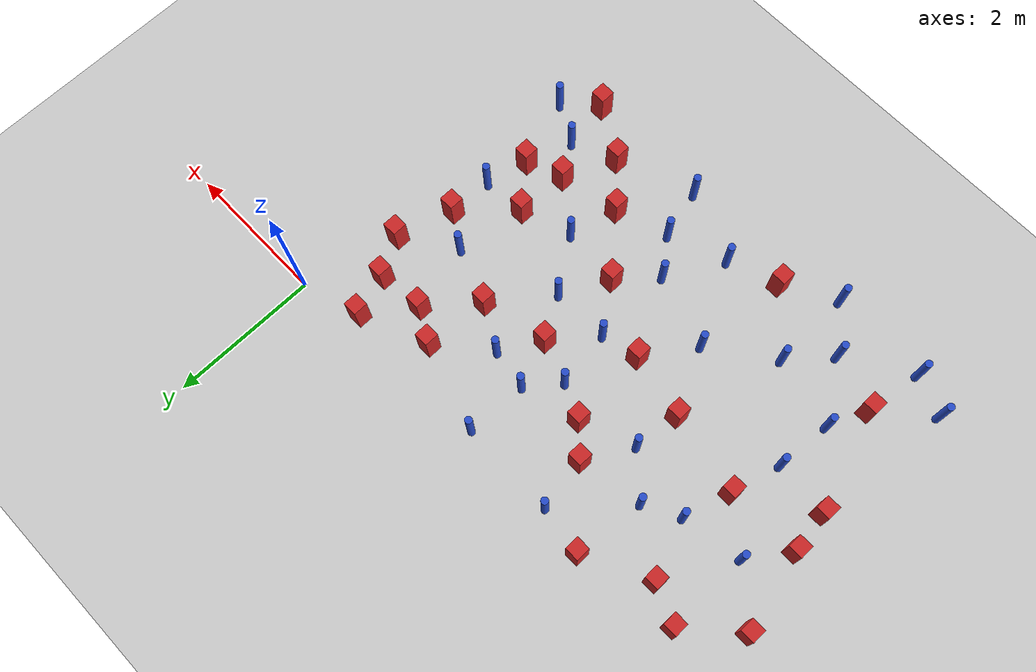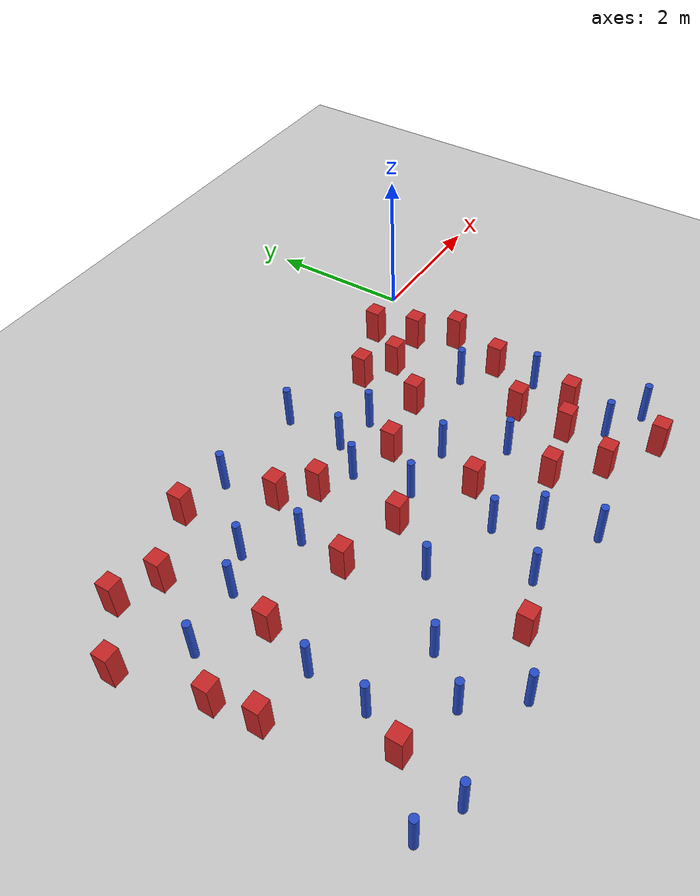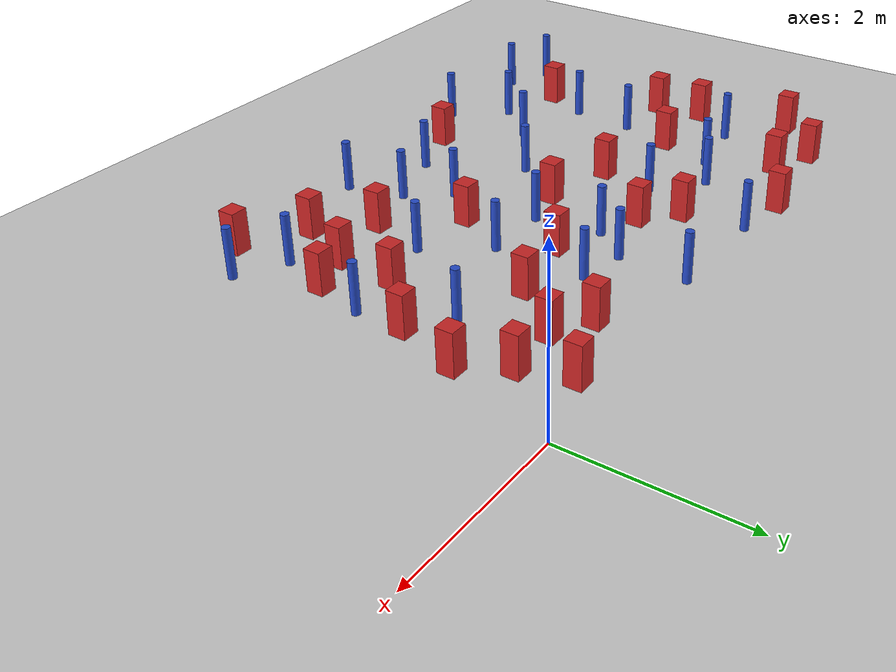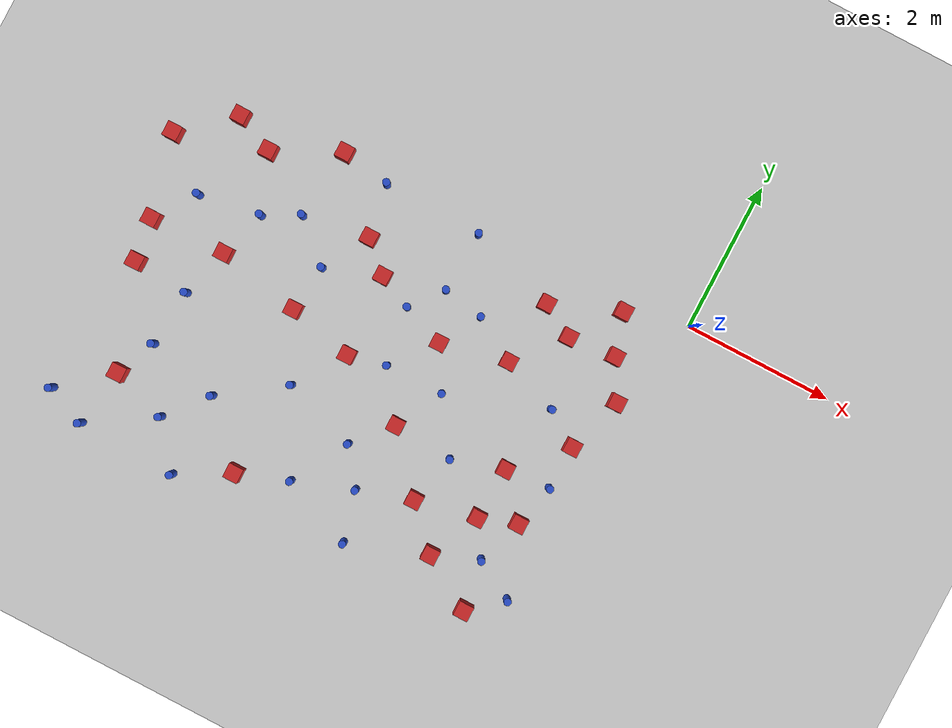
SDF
<sdf version="1.6">
 <world name="default">
  <model name="ground_plane">
   <static>1</static>
   <link name="link">
    <collision name="collision">
     <geometry><plane><normal>0 0 1</normal><size>100 100</size></plane></geometry>
     <surface><friction><ode><mu>100</mu><mu2>50</mu2></ode></friction></surface>
    </collision>
    <visual name="visual">
     <cast_shadows>0</cast_shadows>
     <geometry><plane><normal>0 0 1</normal><size>100 100</size></plane></geometry>
     <material>
      <ambient>1.0 1.0 1.0 1.0</ambient>
      <diffuse>0.8 0.8 0.8 1.0</diffuse>
      <specular>0.01 0.01 0.01 1.000000</specular>
     </material>
    </visual>
   </link>
  </model>
  <model name="square_post_obstacle2">
   <static>true</static>
   <pose>-2.72865628768 -2.8582352957 -6.11067671241e-07 -5.50515727128e-06 -8.79689657224e-07 2.37013304536e-05</pose>
   <link name="link">
    <pose>0 0 0.25 0 -0 0</pose>
    <inertial>
     <mass>100</mass>
     <inertia>
      <ixx>0.166667</ixx>
      <ixy>0</ixy>
      <ixz>0</ixz>
      <iyy>0.166667</iyy>
      <iyz>0</iyz>
      <izz>0.166667</izz>
     </inertia>
    </inertial>
    <collision name="collision"><geometry><box><size>.2 .2 .5</size></box></geometry></collision>
    <visual name="visual">
     <geometry><box><size>.2 .2 .5</size></box></geometry>
     <material>
      <script><name>Gazebo/Red</name><uri>file://media/materials/scripts/gazebo.material</uri></script>
     </material>
    </visual>
   </link>
  </model>
  <model name="pole_obstacle1">
   <static>true</static>
   <pose>-5.02907889812 -1.0506375493 -9.47619616065e-06 5.49618799738e-07 2.36310414071e-07 -1.55090534796e-07</pose>
   <link name="link">
    <pose>0 0 0.3 0 -0 0</pose>
    <inertial>
     <mass>1</mass>
     <inertia><ixx>0.145833</ixx><ixy>0</ixy><ixz>0</ixz><iyy>0.145833</iyy><iyz>0</iyz><izz>0.125</izz></inertia>
    </inertial>
    <collision name="collision">
     <geometry><cylinder><radius>0.05</radius><length>.6</length></cylinder></geometry>
    </collision>
    <visual name="visual">
     <geometry><cylinder><radius>0.05</radius><length>.6</length></cylinder></geometry>
     <material>
      <script><name>Gazebo/Blue</name><uri>file://media/materials/scripts/gazebo.material</uri></script>
     </material>
    </visual>
   </link>
  </model>
  <model name="square_post_obstacle4">
   <static>true</static>
   <pose>-3.76172008003 -1.25565885905 -6.11067671241e-07 -5.50515727128e-06 -8.79689657224e-07 2.37013304536e-05</pose>
   <link name="link">
    <pose>0 0 0.25 0 -0 0</pose>
    <inertial>
     <mass>100</mass>
     <inertia>
      <ixx>0.166667</ixx>
      <ixy>0</ixy>
      <ixz>0</ixz>
      <iyy>0.166667</iyy>
      <iyz>0</iyz>
      <izz>0.166667</izz>
     </inertia>
    </inertial>
    <collision name="collision"><geometry><box><size>.2 .2 .5</size></box></geometry></collision>
    <visual name="visual">
     <geometry><box><size>.2 .2 .5</size></box></geometry>
     <material>
      <script><name>Gazebo/Red</name><uri>file://media/materials/scripts/gazebo.material</uri></script>
     </material>
    </visual>
   </link>
  </model>
  <model name="pole_obstacle7">
   <static>true</static>
   <pose>-4.14999581618 -3.02715681474 -9.47619616065e-06 5.49618799738e-07 2.36310414051e-07 -1.55090534805e-07</pose>
   <link name="link">
    <pose>0 0 0.3 0 -0 0</pose>
    <inertial>
     <mass>1</mass>
     <inertia><ixx>0.145833</ixx><ixy>0</ixy><ixz>0</ixz><iyy>0.145833</iyy><iyz>0</iyz><izz>0.125</izz></inertia>
    </inertial>
    <collision name="collision">
     <geometry><cylinder><radius>0.05</radius><length>.6</length></cylinder></geometry>
    </collision>
    <visual name="visual">
     <geometry><cylinder><radius>0.05</radius><length>.6</length></cylinder></geometry>
     <material>
      <script><name>Gazebo/Blue</name><uri>file://media/materials/scripts/gazebo.material</uri></script>
     </material>
    </visual>
   </link>
  </model>
  <model name="square_post_obstacle9">
   <static>true</static>
   <pose>-5.68394783283 -1.94065890462 -6.11067671241e-07 -5.50515727128e-06 -8.79689657224e-07 2.37013304536e-05</pose>
   <link name="link">
    <pose>0 0 0.25 0 -0 0</pose>
    <inertial>
     <mass>100</mass>
     <inertia>
      <ixx>0.166667</ixx>
      <ixy>0</ixy>
      <ixz>0</ixz>
      <iyy>0.166667</iyy>
      <iyz>0</iyz>
      <izz>0.166667</izz>
     </inertia>
    </inertial>
    <collision name="collision"><geometry><box><size>.2 .2 .5</size></box></geometry></collision>
    <visual name="visual">
     <geometry><box><size>.2 .2 .5</size></box></geometry>
     <material>
      <script><name>Gazebo/Red</name><uri>file://media/materials/scripts/gazebo.material</uri></script>
     </material>
    </visual>
   </link>
  </model>
  <model name="pole_obstacle16">
   <static>true</static>
   <pose>-5.94595383684 -3.38021857576 -9.47619616065e-06 5.49618799738e-07 2.36310414051e-07 -1.55090534805e-07</pose>
   <link name="link">
    <pose>0 0 0.3 0 -0 0</pose>
    <inertial>
     <mass>1</mass>
     <inertia><ixx>0.145833</ixx><ixy>0</ixy><ixz>0</ixz><iyy>0.145833</iyy><iyz>0</iyz><izz>0.125</izz></inertia>
    </inertial>
    <collision name="collision">
     <geometry><cylinder><radius>0.05</radius><length>.6</length></cylinder></geometry>
    </collision>
    <visual name="visual">
     <geometry><cylinder><radius>0.05</radius><length>.6</length></cylinder></geometry>
     <material>
      <script><name>Gazebo/Blue</name><uri>file://media/materials/scripts/gazebo.material</uri></script>
     </material>
    </visual>
   </link>
  </model>
  <model name="square_post_obstacle25">
   <static>true</static>
   <pose>-1.26393428646 -3.41520389872 -6.11067671241e-07 -5.50515727128e-06 -8.79689657224e-07 2.37013304536e-05</pose>
   <link name="link">
    <pose>0 0 0.25 0 -0 0</pose>
    <inertial>
     <mass>100</mass>
     <inertia>
      <ixx>0.166667</ixx>
      <ixy>0</ixy>
      <ixz>0</ixz>
      <iyy>0.166667</iyy>
      <iyz>0</iyz>
      <izz>0.166667</izz>
     </inertia>
    </inertial>
    <collision name="collision"><geometry><box><size>.2 .2 .5</size></box></geometry></collision>
    <visual name="visual">
     <geometry><box><size>.2 .2 .5</size></box></geometry>
     <material>
      <script><name>Gazebo/Red</name><uri>file://media/materials/scripts/gazebo.material</uri></script>
     </material>
    </visual>
   </link>
  </model>
  <model name="square_post_obstacle27">
   <static>true</static>
   <pose>-0.614583630941 -2.0593344296 -6.11067671241e-07 -5.50515727128e-06 -8.79689657224e-07 2.37013304536e-05</pose>
   <link name="link">
    <pose>0 0 0.25 0 -0 0</pose>
    <inertial>
     <mass>100</mass>
     <inertia>
      <ixx>0.166667</ixx>
      <ixy>0</ixy>
      <ixz>0</ixz>
      <iyy>0.166667</iyy>
      <iyz>0</iyz>
      <izz>0.166667</izz>
     </inertia>
    </inertial>
    <collision name="collision"><geometry><box><size>.2 .2 .5</size></box></geometry></collision>
    <visual name="visual">
     <geometry><box><size>.2 .2 .5</size></box></geometry>
     <material>
      <script><name>Gazebo/Red</name><uri>file://media/materials/scripts/gazebo.material</uri></script>
     </material>
    </visual>
   </link>
  </model>
  <model name="pole_obstacle23">
   <static>true</static>
   <pose>-4.96430539039 -4.74166510381 -9.47619616065e-06 5.49618799737e-07 2.36310414037e-07 -1.55090534814e-07</pose>
   <link name="link">
    <pose>0 0 0.3 0 -0 0</pose>
    <inertial>
     <mass>1</mass>
     <inertia><ixx>0.145833</ixx><ixy>0</ixy><ixz>0</ixz><iyy>0.145833</iyy><iyz>0</iyz><izz>0.125</izz></inertia>
    </inertial>
    <collision name="collision">
     <geometry><cylinder><radius>0.05</radius><length>.6</length></cylinder></geometry>
    </collision>
    <visual name="visual">
     <geometry><cylinder><radius>0.05</radius><length>.6</length></cylinder></geometry>
     <material>
      <script><name>Gazebo/Blue</name><uri>file://media/materials/scripts/gazebo.material</uri></script>
     </material>
    </visual>
   </link>
  </model>
  <model name="pole_obstacle28">
   <static>true</static>
   <pose>-2.9671059335 -1.04168767514 -9.47619616065e-06 5.49618799738e-07 2.3631041407e-07 -1.55090534797e-07</pose>
   <link name="link">
    <pose>0 0 0.3 0 -0 0</pose>
    <inertial>
     <mass>1</mass>
     <inertia><ixx>0.145833</ixx><ixy>0</ixy><ixz>0</ixz><iyy>0.145833</iyy><iyz>0</iyz><izz>0.125</izz></inertia>
    </inertial>
    <collision name="collision">
     <geometry><cylinder><radius>0.05</radius><length>.6</length></cylinder></geometry>
    </collision>
    <visual name="visual">
     <geometry><cylinder><radius>0.05</radius><length>.6</length></cylinder></geometry>
     <material>
      <script><name>Gazebo/Blue</name><uri>file://media/materials/scripts/gazebo.material</uri></script>
     </material>
    </visual>
   </link>
  </model>
  <model name="pole_obstacle31">
   <static>true</static>
   <pose>-0.971076690407 -3.86728689164 -9.47619616065e-06 5.49618799737e-07 2.36310414063e-07 -1.55090534799e-07</pose>
   <link name="link">
    <pose>0 0 0.3 0 -0 0</pose>
    <inertial>
     <mass>1</mass>
     <inertia><ixx>0.145833</ixx><ixy>0</ixy><ixz>0</ixz><iyy>0.145833</iyy><iyz>0</iyz><izz>0.125</izz></inertia>
    </inertial>
    <collision name="collision">
     <geometry><cylinder><radius>0.05</radius><length>.6</length></cylinder></geometry>
    </collision>
    <visual name="visual">
     <geometry><cylinder><radius>0.05</radius><length>.6</length></cylinder></geometry>
     <material>
      <script><name>Gazebo/Blue</name><uri>file://media/materials/scripts/gazebo.material</uri></script>
     </material>
    </visual>
   </link>
  </model>
  <model name="square_post_obstacle35">
   <static>true</static>
   <pose>-4.26666349533 -4.35050022261 -6.11067671241e-07 -5.50515727128e-06 -8.79689657224e-07 2.37013304536e-05</pose>
   <link name="link">
    <pose>0 0 0.25 0 -0 0</pose>
    <inertial>
     <mass>100</mass>
     <inertia>
      <ixx>0.166667</ixx>
      <ixy>0</ixy>
      <ixz>0</ixz>
      <iyy>0.166667</iyy>
      <iyz>0</iyz>
      <izz>0.166667</izz>
     </inertia>
    </inertial>
    <collision name="collision"><geometry><box><size>.2 .2 .5</size></box></geometry></collision>
    <visual name="visual">
     <geometry><box><size>.2 .2 .5</size></box></geometry>
     <material>
      <script><name>Gazebo/Red</name><uri>file://media/materials/scripts/gazebo.material</uri></script>
     </material>
    </visual>
   </link>
  </model>
  <model name="pole_obstacle35">
   <static>true</static>
   <pose>-6.83010657084 -4.47698812594 -9.47619616065e-06 5.49618799737e-07 2.36310414037e-07 -1.55090534814e-07</pose>
   <link name="link">
    <pose>0 0 0.3 0 -0 0</pose>
    <inertial>
     <mass>1</mass>
     <inertia><ixx>0.145833</ixx><ixy>0</ixy><ixz>0</ixz><iyy>0.145833</iyy><iyz>0</iyz><izz>0.125</izz></inertia>
    </inertial>
    <collision name="collision">
     <geometry><cylinder><radius>0.05</radius><length>.6</length></cylinder></geometry>
    </collision>
    <visual name="visual">
     <geometry><cylinder><radius>0.05</radius><length>.6</length></cylinder></geometry>
     <material>
      <script><name>Gazebo/Blue</name><uri>file://media/materials/scripts/gazebo.material</uri></script>
     </material>
    </visual>
   </link>
  </model>
  <model name="pole_obstacle37">
   <static>true</static>
   <pose>-0.627396027164 -2.65840903085 -9.47619616065e-06 5.49618799737e-07 2.36310414066e-07 -1.55090534797e-07</pose>
   <link name="link">
    <pose>0 0 0.3 0 -0 0</pose>
    <inertial>
     <mass>1</mass>
     <inertia><ixx>0.145833</ixx><ixy>0</ixy><ixz>0</ixz><iyy>0.145833</iyy><iyz>0</iyz><izz>0.125</izz></inertia>
    </inertial>
    <collision name="collision">
     <geometry><cylinder><radius>0.05</radius><length>.6</length></cylinder></geometry>
    </collision>
    <visual name="visual">
     <geometry><cylinder><radius>0.05</radius><length>.6</length></cylinder></geometry>
     <material>
      <script><name>Gazebo/Blue</name><uri>file://media/materials/scripts/gazebo.material</uri></script>
     </material>
    </visual>
   </link>
  </model>
  <model name="pole_obstacle42">
   <static>true</static>
   <pose>-1.07234245253 -1.75612084126 -9.47619616065e-06 5.49618799737e-07 2.36310414065e-07 -1.55090534798e-07</pose>
   <link name="link">
    <pose>0 0 0.3 0 -0 0</pose>
    <inertial>
     <mass>1</mass>
     <inertia><ixx>0.145833</ixx><ixy>0</ixy><ixz>0</ixz><iyy>0.145833</iyy><iyz>0</iyz><izz>0.125</izz></inertia>
    </inertial>
    <collision name="collision">
     <geometry><cylinder><radius>0.05</radius><length>.6</length></cylinder></geometry>
    </collision>
    <visual name="visual">
     <geometry><cylinder><radius>0.05</radius><length>.6</length></cylinder></geometry>
     <material>
      <script><name>Gazebo/Blue</name><uri>file://media/materials/scripts/gazebo.material</uri></script>
     </material>
    </visual>
   </link>
  </model>
  <model name="pole_obstacle43">
   <static>true</static>
   <pose>-6.32375746316 -1.43166400838 -9.47619616065e-06 5.49618799738e-07 2.36310414071e-07 -1.55090534796e-07</pose>
   <link name="link">
    <pose>0 0 0.3 0 -0 0</pose>
    <inertial>
     <mass>1</mass>
     <inertia><ixx>0.145833</ixx><ixy>0</ixy><ixz>0</ixz><iyy>0.145833</iyy><iyz>0</iyz><izz>0.125</izz></inertia>
    </inertial>
    <collision name="collision">
     <geometry><cylinder><radius>0.05</radius><length>.6</length></cylinder></geometry>
    </collision>
    <visual name="visual">
     <geometry><cylinder><radius>0.05</radius><length>.6</length></cylinder></geometry>
     <material>
      <script><name>Gazebo/Blue</name><uri>file://media/materials/scripts/gazebo.material</uri></script>
     </material>
    </visual>
   </link>
  </model>
  <model name="pole_obstacle45">
   <static>true</static>
   <pose>-3.18789644417 -2.23972749038 -9.47619616065e-06 5.49618799737e-07 2.36310414051e-07 -1.55090534807e-07</pose>
   <link name="link">
    <pose>0 0 0.3 0 -0 0</pose>
    <inertial>
     <mass>1</mass>
     <inertia><ixx>0.145833</ixx><ixy>0</ixy><ixz>0</ixz><iyy>0.145833</iyy><iyz>0</iyz><izz>0.125</izz></inertia>
    </inertial>
    <collision name="collision">
     <geometry><cylinder><radius>0.05</radius><length>.6</length></cylinder></geometry>
    </collision>
    <visual name="visual">
     <geometry><cylinder><radius>0.05</radius><length>.6</length></cylinder></geometry>
     <material>
      <script><name>Gazebo/Blue</name><uri>file://media/materials/scripts/gazebo.material</uri></script>
     </material>
    </visual>
   </link>
  </model>
  <model name="square_post_obstacle49">
   <static>true</static>
   <pose>-2.08102588418 -3.58743015969 -6.11067671241e-07 -5.50515727128e-06 -8.79689657224e-07 2.37013304536e-05</pose>
   <link name="link">
    <pose>0 0 0.25 0 -0 0</pose>
    <inertial>
     <mass>100</mass>
     <inertia>
      <ixx>0.166667</ixx>
      <ixy>0</ixy>
      <ixz>0</ixz>
      <iyy>0.166667</iyy>
      <iyz>0</iyz>
      <izz>0.166667</izz>
     </inertia>
    </inertial>
    <collision name="collision"><geometry><box><size>.2 .2 .5</size></box></geometry></collision>
    <visual name="visual">
     <geometry><box><size>.2 .2 .5</size></box></geometry>
     <material>
      <script><name>Gazebo/Red</name><uri>file://media/materials/scripts/gazebo.material</uri></script>
     </material>
    </visual>
   </link>
  </model>
  <model name="square_post_obstacle56">
   <static>true</static>
   <pose>-1.23428058976 -2.7031561199 -6.11067671241e-07 -5.50515727128e-06 -8.79689657224e-07 2.37013304536e-05</pose>
   <link name="link">
    <pose>0 0 0.25 0 -0 0</pose>
    <inertial>
     <mass>100</mass>
     <inertia>
      <ixx>0.166667</ixx>
      <ixy>0</ixy>
      <ixz>0</ixz>
      <iyy>0.166667</iyy>
      <iyz>0</iyz>
      <izz>0.166667</izz>
     </inertia>
    </inertial>
    <collision name="collision"><geometry><box><size>.2 .2 .5</size></box></geometry></collision>
    <visual name="visual">
     <geometry><box><size>.2 .2 .5</size></box></geometry>
     <material>
      <script><name>Gazebo/Red</name><uri>file://media/materials/scripts/gazebo.material</uri></script>
     </material>
    </visual>
   </link>
  </model>
  <model name="square_post_obstacle60">
   <static>true</static>
   <pose>-4.56889892287 -2.16023500808 -6.11067671241e-07 -5.50515727128e-06 -8.79689657224e-07 2.37013304536e-05</pose>
   <link name="link">
    <pose>0 0 0.25 0 -0 0</pose>
    <inertial>
     <mass>100</mass>
     <inertia>
      <ixx>0.166667</ixx>
      <ixy>0</ixy>
      <ixz>0</ixz>
      <iyy>0.166667</iyy>
      <iyz>0</iyz>
      <izz>0.166667</izz>
     </inertia>
    </inertial>
    <collision name="collision"><geometry><box><size>.2 .2 .5</size></box></geometry></collision>
    <visual name="visual">
     <geometry><box><size>.2 .2 .5</size></box></geometry>
     <material>
      <script><name>Gazebo/Red</name><uri>file://media/materials/scripts/gazebo.material</uri></script>
     </material>
    </visual>
   </link>
  </model>
  <model name="square_post_obstacle64">
   <static>true</static>
   <pose>-0.842397873828 -0.231686679184 -6.11067671241e-07 -5.50515727128e-06 -8.79689657224e-07 2.37013304536e-05</pose>
   <link name="link">
    <pose>0 0 0.25 0 -0 0</pose>
    <inertial>
     <mass>100</mass>
     <inertia>
      <ixx>0.166667</ixx>
      <ixy>0</ixy>
      <ixz>0</ixz>
      <iyy>0.166667</iyy>
      <iyz>0</iyz>
      <izz>0.166667</izz>
     </inertia>
    </inertial>
    <collision name="collision"><geometry><box><size>.2 .2 .5</size></box></geometry></collision>
    <visual name="visual">
     <geometry><box><size>.2 .2 .5</size></box></geometry>
     <material>
      <script><name>Gazebo/Red</name><uri>file://media/materials/scripts/gazebo.material</uri></script>
     </material>
    </visual>
   </link>
  </model>
  <model name="square_post_obstacle68">
   <static>true</static>
   <pose>-6.30621722418 -0.297414859937 -6.11067671241e-07 -5.50515727128e-06 -8.79689657224e-07 2.37013304536e-05</pose>
   <link name="link">
    <pose>0 0 0.25 0 -0 0</pose>
    <inertial>
     <mass>100</mass>
     <inertia>
      <ixx>0.166667</ixx>
      <ixy>0</ixy>
      <ixz>0</ixz>
      <iyy>0.166667</iyy>
      <iyz>0</iyz>
      <izz>0.166667</izz>
     </inertia>
    </inertial>
    <collision name="collision"><geometry><box><size>.2 .2 .5</size></box></geometry></collision>
    <visual name="visual">
     <geometry><box><size>.2 .2 .5</size></box></geometry>
     <material>
      <script><name>Gazebo/Red</name><uri>file://media/materials/scripts/gazebo.material</uri></script>
     </material>
    </visual>
   </link>
  </model>
  <model name="pole_obstacle67">
   <static>true</static>
   <pose>-4.97842179656 -3.61819670015 -9.47619616065e-06 5.49618799738e-07 2.36310414051e-07 -1.55090534805e-07</pose>
   <link name="link">
    <pose>0 0 0.3 0 -0 0</pose>
    <inertial>
     <mass>1</mass>
     <inertia><ixx>0.145833</ixx><ixy>0</ixy><ixz>0</ixz><iyy>0.145833</iyy><iyz>0</iyz><izz>0.125</izz></inertia>
    </inertial>
    <collision name="collision">
     <geometry><cylinder><radius>0.05</radius><length>.6</length></cylinder></geometry>
    </collision>
    <visual name="visual">
     <geometry><cylinder><radius>0.05</radius><length>.6</length></cylinder></geometry>
     <material>
      <script><name>Gazebo/Blue</name><uri>file://media/materials/scripts/gazebo.material</uri></script>
     </material>
    </visual>
   </link>
  </model>
  <model name="pole_obstacle70">
   <static>true</static>
   <pose>-2.40282222915 -2.23048902739 -9.47619616065e-06 5.49618799737e-07 2.36310414051e-07 -1.55090534807e-07</pose>
   <link name="link">
    <pose>0 0 0.3 0 -0 0</pose>
    <inertial>
     <mass>1</mass>
     <inertia><ixx>0.145833</ixx><ixy>0</ixy><ixz>0</ixz><iyy>0.145833</iyy><iyz>0</iyz><izz>0.125</izz></inertia>
    </inertial>
    <collision name="collision">
     <geometry><cylinder><radius>0.05</radius><length>.6</length></cylinder></geometry>
    </collision>
    <visual name="visual">
     <geometry><cylinder><radius>0.05</radius><length>.6</length></cylinder></geometry>
     <material>
      <script><name>Gazebo/Blue</name><uri>file://media/materials/scripts/gazebo.material</uri></script>
     </material>
    </visual>
   </link>
  </model>
  <model name="square_post_obstacle76">
   <static>true</static>
   <pose>-6.96667886405 -0.87870225096 -6.11067671241e-07 -5.50515727128e-06 -8.79689657224e-07 2.37013304536e-05</pose>
   <link name="link">
    <pose>0 0 0.25 0 -0 0</pose>
    <inertial>
     <mass>100</mass>
     <inertia>
      <ixx>0.166667</ixx>
      <ixy>0</ixy>
      <ixz>0</ixz>
      <iyy>0.166667</iyy>
      <iyz>0</iyz>
      <izz>0.166667</izz>
     </inertia>
    </inertial>
    <collision name="collision"><geometry><box><size>.2 .2 .5</size></box></geometry></collision>
    <visual name="visual">
     <geometry><box><size>.2 .2 .5</size></box></geometry>
     <material>
      <script><name>Gazebo/Red</name><uri>file://media/materials/scripts/gazebo.material</uri></script>
     </material>
    </visual>
   </link>
  </model>
  <model name="pole_obstacle76">
   <static>true</static>
   <pose>-2.4173404336 -1.13744637929 -9.47619616065e-06 5.49618799737e-07 2.36310414072e-07 -1.55090534793e-07</pose>
   <link name="link">
    <pose>0 0 0.3 0 -0 0</pose>
    <inertial>
     <mass>1</mass>
     <inertia><ixx>0.145833</ixx><ixy>0</ixy><ixz>0</ixz><iyy>0.145833</iyy><iyz>0</iyz><izz>0.125</izz></inertia>
    </inertial>
    <collision name="collision">
     <geometry><cylinder><radius>0.05</radius><length>.6</length></cylinder></geometry>
    </collision>
    <visual name="visual">
     <geometry><cylinder><radius>0.05</radius><length>.6</length></cylinder></geometry>
     <material>
      <script><name>Gazebo/Blue</name><uri>file://media/materials/scripts/gazebo.material</uri></script>
     </material>
    </visual>
   </link>
  </model>
  <model name="pole_obstacle88">
   <static>true</static>
   <pose>-3.58696270438 -4.10775519038 -9.47619616065e-06 5.49618799738e-07 2.3631041406e-07 -1.55090534801e-07</pose>
   <link name="link">
    <pose>0 0 0.3 0 -0 0</pose>
    <inertial>
     <mass>1</mass>
     <inertia><ixx>0.145833</ixx><ixy>0</ixy><ixz>0</ixz><iyy>0.145833</iyy><iyz>0</iyz><izz>0.125</izz></inertia>
    </inertial>
    <collision name="collision">
     <geometry><cylinder><radius>0.05</radius><length>.6</length></cylinder></geometry>
    </collision>
    <visual name="visual">
     <geometry><cylinder><radius>0.05</radius><length>.6</length></cylinder></geometry>
     <material>
      <script><name>Gazebo/Blue</name><uri>file://media/materials/scripts/gazebo.material</uri></script>
     </material>
    </visual>
   </link>
  </model>
  <model name="pole_obstacle89">
   <static>true</static>
   <pose>-4.49935718048 -1.52479953524 -9.47619616065e-06 5.49618799738e-07 2.36310414071e-07 -1.55090534796e-07</pose>
   <link name="link">
    <pose>0 0 0.3 0 -0 0</pose>
    <inertial>
     <mass>1</mass>
     <inertia><ixx>0.145833</ixx><ixy>0</ixy><ixz>0</ixz><iyy>0.145833</iyy><iyz>0</iyz><izz>0.125</izz></inertia>
    </inertial>
    <collision name="collision">
     <geometry><cylinder><radius>0.05</radius><length>.6</length></cylinder></geometry>
    </collision>
    <visual name="visual">
     <geometry><cylinder><radius>0.05</radius><length>.6</length></cylinder></geometry>
     <material>
      <script><name>Gazebo/Blue</name><uri>file://media/materials/scripts/gazebo.material</uri></script>
     </material>
    </visual>
   </link>
  </model>
  <model name="square_post_obstacle82">
   <static>true</static>
   <pose>-1.83639873637 -1.47234893235 -6.11067671241e-07 -5.50515727128e-06 -8.79689657224e-07 2.37013304536e-05</pose>
   <link name="link">
    <pose>0 0 0.25 0 -0 0</pose>
    <inertial>
     <mass>100</mass>
     <inertia>
      <ixx>0.166667</ixx>
      <ixy>0</ixy>
      <ixz>0</ixz>
      <iyy>0.166667</iyy>
      <iyz>0</iyz>
      <izz>0.166667</izz>
     </inertia>
    </inertial>
    <collision name="collision"><geometry><box><size>.2 .2 .5</size></box></geometry></collision>
    <visual name="visual">
     <geometry><box><size>.2 .2 .5</size></box></geometry>
     <material>
      <script><name>Gazebo/Red</name><uri>file://media/materials/scripts/gazebo.material</uri></script>
     </material>
    </visual>
   </link>
  </model>
  <model name="square_post_obstacle85">
   <static>true</static>
   <pose>-0.378216031603 -1.29765272816 -6.11067671241e-07 -5.50515727128e-06 -8.79689657224e-07 2.37013304536e-05</pose>
   <link name="link">
    <pose>0 0 0.25 0 -0 0</pose>
    <inertial>
     <mass>100</mass>
     <inertia>
      <ixx>0.166667</ixx>
      <ixy>0</ixy>
      <ixz>0</ixz>
      <iyy>0.166667</iyy>
      <iyz>0</iyz>
      <izz>0.166667</izz>
     </inertia>
    </inertial>
    <collision name="collision"><geometry><box><size>.2 .2 .5</size></box></geometry></collision>
    <visual name="visual">
     <geometry><box><size>.2 .2 .5</size></box></geometry>
     <material>
      <script><name>Gazebo/Red</name><uri>file://media/materials/scripts/gazebo.material</uri></script>
     </material>
    </visual>
   </link>
  </model>
  <model name="square_post_obstacle94">
   <static>true</static>
   <pose>-1.75249242859 -0.595570501893 -6.11067671241e-07 -5.50515727128e-06 -8.79689657224e-07 2.37013304536e-05</pose>
   <link name="link">
    <pose>0 0 0.25 0 -0 0</pose>
    <inertial>
     <mass>100</mass>
     <inertia>
      <ixx>0.166667</ixx>
      <ixy>0</ixy>
      <ixz>0</ixz>
      <iyy>0.166667</iyy>
      <iyz>0</iyz>
      <izz>0.166667</izz>
     </inertia>
    </inertial>
    <collision name="collision"><geometry><box><size>.2 .2 .5</size></box></geometry></collision>
    <visual name="visual">
     <geometry><box><size>.2 .2 .5</size></box></geometry>
     <material>
      <script><name>Gazebo/Red</name><uri>file://media/materials/scripts/gazebo.material</uri></script>
     </material>
    </visual>
   </link>
  </model>
  <model name="square_post_obstacle100">
   <static>true</static>
   <pose>-1.30665751298 -0.84275865981 -6.11067671241e-07 -5.50515727128e-06 -8.79689657224e-07 2.37013304536e-05</pose>
   <link name="link">
    <pose>0 0 0.25 0 -0 0</pose>
    <inertial>
     <mass>100</mass>
     <inertia>
      <ixx>0.166667</ixx>
      <ixy>0</ixy>
      <ixz>0</ixz>
      <iyy>0.166667</iyy>
      <iyz>0</iyz>
      <izz>0.166667</izz>
     </inertia>
    </inertial>
    <collision name="collision"><geometry><box><size>.2 .2 .5</size></box></geometry></collision>
    <visual name="visual">
     <geometry><box><size>.2 .2 .5</size></box></geometry>
     <material>
      <script><name>Gazebo/Red</name><uri>file://media/materials/scripts/gazebo.material</uri></script>
     </material>
    </visual>
   </link>
  </model>
  <model name="pole_obstacle114">
   <static>true</static>
   <pose>-1.92270854939 -2.91996743845 -9.47619616065e-06 5.49618799737e-07 2.36310414062e-07 -1.55090534798e-07</pose>
   <link name="link">
    <pose>0 0 0.3 0 -0 0</pose>
    <inertial>
     <mass>1</mass>
     <inertia><ixx>0.145833</ixx><ixy>0</ixy><ixz>0</ixz><iyy>0.145833</iyy><iyz>0</iyz><izz>0.125</izz></inertia>
    </inertial>
    <collision name="collision">
     <geometry><cylinder><radius>0.05</radius><length>.6</length></cylinder></geometry>
    </collision>
    <visual name="visual">
     <geometry><cylinder><radius>0.05</radius><length>.6</length></cylinder></geometry>
     <material>
      <script><name>Gazebo/Blue</name><uri>file://media/materials/scripts/gazebo.material</uri></script>
     </material>
    </visual>
   </link>
  </model>
  <model name="square_post_obstacle112">
   <static>true</static>
   <pose>-6.62582285523 -2.54977869552 -6.11067671241e-07 -5.50515727128e-06 -8.79689657224e-07 2.37013304536e-05</pose>
   <link name="link">
    <pose>0 0 0.25 0 -0 0</pose>
    <inertial>
     <mass>100</mass>
     <inertia>
      <ixx>0.166667</ixx>
      <ixy>0</ixy>
      <ixz>0</ixz>
      <iyy>0.166667</iyy>
      <iyz>0</iyz>
      <izz>0.166667</izz>
     </inertia>
    </inertial>
    <collision name="collision"><geometry><box><size>.2 .2 .5</size></box></geometry></collision>
    <visual name="visual">
     <geometry><box><size>.2 .2 .5</size></box></geometry>
     <material>
      <script><name>Gazebo/Red</name><uri>file://media/materials/scripts/gazebo.material</uri></script>
     </material>
    </visual>
   </link>
  </model>
  <model name="pole_obstacle123">
   <static>true</static>
   <pose>-3.3041175709 -1.46363735023 -9.47619616065e-06 5.49618799737e-07 2.36310414072e-07 -1.55090534793e-07</pose>
   <link name="link">
    <pose>0 0 0.3 0 -0 0</pose>
    <inertial>
     <mass>1</mass>
     <inertia><ixx>0.145833</ixx><ixy>0</ixy><ixz>0</ixz><iyy>0.145833</iyy><iyz>0</iyz><izz>0.125</izz></inertia>
    </inertial>
    <collision name="collision">
     <geometry><cylinder><radius>0.05</radius><length>.6</length></cylinder></geometry>
    </collision>
    <visual name="visual">
     <geometry><cylinder><radius>0.05</radius><length>.6</length></cylinder></geometry>
     <material>
      <script><name>Gazebo/Blue</name><uri>file://media/materials/scripts/gazebo.material</uri></script>
     </material>
    </visual>
   </link>
  </model>
  <model name="pole_obstacle125">
   <static>true</static>
   <pose>-5.43319142042 -4.15953091645 -9.47619616065e-06 5.49618799737e-07 2.36310414037e-07 -1.55090534814e-07</pose>
   <link name="link">
    <pose>0 0 0.3 0 -0 0</pose>
    <inertial>
     <mass>1</mass>
     <inertia><ixx>0.145833</ixx><ixy>0</ixy><ixz>0</ixz><iyy>0.145833</iyy><iyz>0</iyz><izz>0.125</izz></inertia>
    </inertial>
    <collision name="collision">
     <geometry><cylinder><radius>0.05</radius><length>.6</length></cylinder></geometry>
    </collision>
    <visual name="visual">
     <geometry><cylinder><radius>0.05</radius><length>.6</length></cylinder></geometry>
     <material>
      <script><name>Gazebo/Blue</name><uri>file://media/materials/scripts/gazebo.material</uri></script>
     </material>
    </visual>
   </link>
  </model>
  <model name="square_post_obstacle120">
   <static>true</static>
   <pose>-4.13955693524 -0.902994351145 -6.11067671241e-07 -5.50515727128e-06 -8.79689657224e-07 2.37013304536e-05</pose>
   <link name="link">
    <pose>0 0 0.25 0 -0 0</pose>
    <inertial>
     <mass>100</mass>
     <inertia>
      <ixx>0.166667</ixx>
      <ixy>0</ixy>
      <ixz>0</ixz>
      <iyy>0.166667</iyy>
      <iyz>0</iyz>
      <izz>0.166667</izz>
     </inertia>
    </inertial>
    <collision name="collision"><geometry><box><size>.2 .2 .5</size></box></geometry></collision>
    <visual name="visual">
     <geometry><box><size>.2 .2 .5</size></box></geometry>
     <material>
      <script><name>Gazebo/Red</name><uri>file://media/materials/scripts/gazebo.material</uri></script>
     </material>
    </visual>
   </link>
  </model>
  <model name="pole_obstacle151">
   <static>true</static>
   <pose>-6.29694036729 -4.70263187427 -9.47619616065e-06 5.49618799737e-07 2.36310414037e-07 -1.55090534814e-07</pose>
   <link name="link">
    <pose>0 0 0.3 0 -0 0</pose>
    <inertial>
     <mass>1</mass>
     <inertia><ixx>0.145833</ixx><ixy>0</ixy><ixz>0</ixz><iyy>0.145833</iyy><iyz>0</iyz><izz>0.125</izz></inertia>
    </inertial>
    <collision name="collision">
     <geometry><cylinder><radius>0.05</radius><length>.6</length></cylinder></geometry>
    </collision>
    <visual name="visual">
     <geometry><cylinder><radius>0.05</radius><length>.6</length></cylinder></geometry>
     <material>
      <script><name>Gazebo/Blue</name><uri>file://media/materials/scripts/gazebo.material</uri></script>
     </material>
    </visual>
   </link>
  </model>
  <model name="pole_obstacle154">
   <static>true</static>
   <pose>-4.26346169262 -0.195279337812 -9.47619616065e-06 5.49618799738e-07 2.36310414072e-07 -1.55090534795e-07</pose>
   <link name="link">
    <pose>0 0 0.3 0 -0 0</pose>
    <inertial>
     <mass>1</mass>
     <inertia><ixx>0.145833</ixx><ixy>0</ixy><ixz>0</ixz><iyy>0.145833</iyy><iyz>0</iyz><izz>0.125</izz></inertia>
    </inertial>
    <collision name="collision">
     <geometry><cylinder><radius>0.05</radius><length>.6</length></cylinder></geometry>
    </collision>
    <visual name="visual">
     <geometry><cylinder><radius>0.05</radius><length>.6</length></cylinder></geometry>
     <material>
      <script><name>Gazebo/Blue</name><uri>file://media/materials/scripts/gazebo.material</uri></script>
     </material>
    </visual>
   </link>
  </model>
  <model name="square_post_obstacle148">
   <static>true</static>
   <pose>-0.766664591547 -3.23881684038 -6.11067671241e-07 -5.50515727128e-06 -8.79689657224e-07 2.37013304536e-05</pose>
   <link name="link">
    <pose>0 0 0.25 0 -0 0</pose>
    <inertial>
     <mass>100</mass>
     <inertia>
      <ixx>0.166667</ixx>
      <ixy>0</ixy>
      <ixz>0</ixz>
      <iyy>0.166667</iyy>
      <iyz>0</iyz>
      <izz>0.166667</izz>
     </inertia>
    </inertial>
    <collision name="collision"><geometry><box><size>.2 .2 .5</size></box></geometry></collision>
    <visual name="visual">
     <geometry><box><size>.2 .2 .5</size></box></geometry>
     <material>
      <script><name>Gazebo/Red</name><uri>file://media/materials/scripts/gazebo.material</uri></script>
     </material>
    </visual>
   </link>
  </model>
  <model name="square_post_obstacle152">
   <static>true</static>
   <pose>-6.16796833848 -3.90973610386 -6.11067671241e-07 -5.50515727128e-06 -8.79689657224e-07 2.37013304536e-05</pose>
   <link name="link">
    <pose>0 0 0.25 0 -0 0</pose>
    <inertial>
     <mass>100</mass>
     <inertia>
      <ixx>0.166667</ixx>
      <ixy>0</ixy>
      <ixz>0</ixz>
      <iyy>0.166667</iyy>
      <iyz>0</iyz>
      <izz>0.166667</izz>
     </inertia>
    </inertial>
    <collision name="collision"><geometry><box><size>.2 .2 .5</size></box></geometry></collision>
    <visual name="visual">
     <geometry><box><size>.2 .2 .5</size></box></geometry>
     <material>
      <script><name>Gazebo/Red</name><uri>file://media/materials/scripts/gazebo.material</uri></script>
     </material>
    </visual>
   </link>
  </model>
  <model name="pole_obstacle167">
   <static>true</static>
   <pose>-5.87988348237 -2.61088656735 -9.47619616065e-06 5.49618799738e-07 2.36310414051e-07 -1.55090534805e-07</pose>
   <link name="link">
    <pose>0 0 0.3 0 -0 0</pose>
    <inertial>
     <mass>1</mass>
     <inertia><ixx>0.145833</ixx><ixy>0</ixy><ixz>0</ixz><iyy>0.145833</iyy><iyz>0</iyz><izz>0.125</izz></inertia>
    </inertial>
    <collision name="collision">
     <geometry><cylinder><radius>0.05</radius><length>.6</length></cylinder></geometry>
    </collision>
    <visual name="visual">
     <geometry><cylinder><radius>0.05</radius><length>.6</length></cylinder></geometry>
     <material>
      <script><name>Gazebo/Blue</name><uri>file://media/materials/scripts/gazebo.material</uri></script>
     </material>
    </visual>
   </link>
  </model>
  <model name="square_post_obstacle161">
   <static>true</static>
   <pose>-6.70379373197 -1.97702146797 -6.11067671241e-07 -5.50515727128e-06 -8.79689657224e-07 2.37013304536e-05</pose>
   <link name="link">
    <pose>0 0 0.25 0 -0 0</pose>
    <inertial>
     <mass>100</mass>
     <inertia>
      <ixx>0.166667</ixx>
      <ixy>0</ixy>
      <ixz>0</ixz>
      <iyy>0.166667</iyy>
      <iyz>0</iyz>
      <izz>0.166667</izz>
     </inertia>
    </inertial>
    <collision name="collision"><geometry><box><size>.2 .2 .5</size></box></geometry></collision>
    <visual name="visual">
     <geometry><box><size>.2 .2 .5</size></box></geometry>
     <material>
      <script><name>Gazebo/Red</name><uri>file://media/materials/scripts/gazebo.material</uri></script>
     </material>
    </visual>
   </link>
  </model>
  <model name="pole_obstacle171">
   <static>true</static>
   <pose>-2.93281453806 -0.2168555589 -9.4761961606e-06 5.49618799729e-07 2.36310414002e-07 -1.55090534824e-07</pose>
   <link name="link">
    <pose>0 0 0.3 0 -0 0</pose>
    <inertial>
     <mass>1</mass>
     <inertia><ixx>0.145833</ixx><ixy>0</ixy><ixz>0</ixz><iyy>0.145833</iyy><iyz>0</iyz><izz>0.125</izz></inertia>
    </inertial>
    <collision name="collision">
     <geometry><cylinder><radius>0.05</radius><length>.6</length></cylinder></geometry>
    </collision>
    <visual name="visual">
     <geometry><cylinder><radius>0.05</radius><length>.6</length></cylinder></geometry>
     <material>
      <script><name>Gazebo/Blue</name><uri>file://media/materials/scripts/gazebo.material</uri></script>
     </material>
    </visual>
   </link>
  </model>
  <model name="pole_obstacle174">
   <static>true</static>
   <pose>-2.80192055057 -3.82286197418 -9.47619616065e-06 5.49618799737e-07 2.36310414051e-07 -1.55090534807e-07</pose>
   <link name="link">
    <pose>0 0 0.3 0 -0 0</pose>
    <inertial>
     <mass>1</mass>
     <inertia><ixx>0.145833</ixx><ixy>0</ixy><ixz>0</ixz><iyy>0.145833</iyy><iyz>0</iyz><izz>0.125</izz></inertia>
    </inertial>
    <collision name="collision">
     <geometry><cylinder><radius>0.05</radius><length>.6</length></cylinder></geometry>
    </collision>
    <visual name="visual">
     <geometry><cylinder><radius>0.05</radius><length>.6</length></cylinder></geometry>
     <material>
      <script><name>Gazebo/Blue</name><uri>file://media/materials/scripts/gazebo.material</uri></script>
     </material>
    </visual>
   </link>
  </model>
  <model name="pole_obstacle180">
   <static>true</static>
   <pose>-2.62648615763 -4.49383987703 -9.47619616065e-06 5.49618799738e-07 2.3631041406e-07 -1.55090534801e-07</pose>
   <link name="link">
    <pose>0 0 0.3 0 -0 0</pose>
    <inertial>
     <mass>1</mass>
     <inertia><ixx>0.145833</ixx><ixy>0</ixy><ixz>0</ixz><iyy>0.145833</iyy><iyz>0</iyz><izz>0.125</izz></inertia>
    </inertial>
    <collision name="collision">
     <geometry><cylinder><radius>0.05</radius><length>.6</length></cylinder></geometry>
    </collision>
    <visual name="visual">
     <geometry><cylinder><radius>0.05</radius><length>.6</length></cylinder></geometry>
     <material>
      <script><name>Gazebo/Blue</name><uri>file://media/materials/scripts/gazebo.material</uri></script>
     </material>
    </visual>
   </link>
  </model>
  <model name="pole_obstacle184">
   <static>true</static>
   <pose>-3.15968883357 -3.35079624101 -9.47619616065e-06 5.49618799737e-07 2.36310414067e-07 -1.55090534797e-07</pose>
   <link name="link">
    <pose>0 0 0.3 0 -0 0</pose>
    <inertial>
     <mass>1</mass>
     <inertia><ixx>0.145833</ixx><ixy>0</ixy><ixz>0</ixz><iyy>0.145833</iyy><iyz>0</iyz><izz>0.125</izz></inertia>
    </inertial>
    <collision name="collision">
     <geometry><cylinder><radius>0.05</radius><length>.6</length></cylinder></geometry>
    </collision>
    <visual name="visual">
     <geometry><cylinder><radius>0.05</radius><length>.6</length></cylinder></geometry>
     <material>
      <script><name>Gazebo/Blue</name><uri>file://media/materials/scripts/gazebo.material</uri></script>
     </material>
    </visual>
   </link>
  </model>
  <model name="square_post_obstacle173">
   <static>true</static>
   <pose>-1.57584023075 -4.10823631198 -6.11067671241e-07 -5.50515727128e-06 -8.79689657224e-07 2.37013304536e-05</pose>
   <link name="link">
    <pose>0 0 0.25 0 -0 0</pose>
    <inertial>
     <mass>100</mass>
     <inertia>
      <ixx>0.166667</ixx>
      <ixy>0</ixy>
      <ixz>0</ixz>
      <iyy>0.166667</iyy>
      <iyz>0</iyz>
      <izz>0.166667</izz>
     </inertia>
    </inertial>
    <collision name="collision"><geometry><box><size>.2 .2 .5</size></box></geometry></collision>
    <visual name="visual">
     <geometry><box><size>.2 .2 .5</size></box></geometry>
     <material>
      <script><name>Gazebo/Red</name><uri>file://media/materials/scripts/gazebo.material</uri></script>
     </material>
    </visual>
   </link>
  </model>
  <model name="square_post_obstacle182">
   <static>true</static>
   <pose>-4.91655219624 -0.0939480747566 -6.11067671241e-07 -5.50515727128e-06 -8.79689657224e-07 2.37013304536e-05</pose>
   <link name="link">
    <pose>0 0 0.25 0 -0 0</pose>
    <inertial>
     <mass>100</mass>
     <inertia>
      <ixx>0.166667</ixx>
      <ixy>0</ixy>
      <ixz>0</ixz>
      <iyy>0.166667</iyy>
      <iyz>0</iyz>
      <izz>0.166667</izz>
     </inertia>
    </inertial>
    <collision name="collision"><geometry><box><size>.2 .2 .5</size></box></geometry></collision>
    <visual name="visual">
     <geometry><box><size>.2 .2 .5</size></box></geometry>
     <material>
      <script><name>Gazebo/Red</name><uri>file://media/materials/scripts/gazebo.material</uri></script>
     </material>
    </visual>
   </link>
  </model>
  <model name="square_post_obstacle203">
   <static>true</static>
   <pose>-2.73083855852 -1.67422271751 -6.11067671241e-07 -5.50515727128e-06 -8.79689657224e-07 2.37013304536e-05</pose>
   <link name="link">
    <pose>0 0 0.25 0 -0 0</pose>
    <inertial>
     <mass>100</mass>
     <inertia>
      <ixx>0.166667</ixx>
      <ixy>0</ixy>
      <ixz>0</ixz>
      <iyy>0.166667</iyy>
      <iyz>0</iyz>
      <izz>0.166667</izz>
     </inertia>
    </inertial>
    <collision name="collision"><geometry><box><size>.2 .2 .5</size></box></geometry></collision>
    <visual name="visual">
     <geometry><box><size>.2 .2 .5</size></box></geometry>
     <material>
      <script><name>Gazebo/Red</name><uri>file://media/materials/scripts/gazebo.material</uri></script>
     </material>
    </visual>
   </link>
  </model>
  <model name="pole_obstacle197">
   <static>true</static>
   <pose>-5.49989068617 -1.29663222484 -9.47619616065e-06 5.49618799738e-07 2.36310414071e-07 -1.55090534796e-07</pose>
   <link name="link">
    <pose>0 0 0.3 0 -0 0</pose>
    <inertial>
     <mass>1</mass>
     <inertia><ixx>0.145833</ixx><ixy>0</ixy><ixz>0</ixz><iyy>0.145833</iyy><iyz>0</iyz><izz>0.125</izz></inertia>
    </inertial>
    <collision name="collision">
     <geometry><cylinder><radius>0.05</radius><length>.6</length></cylinder></geometry>
    </collision>
    <visual name="visual">
     <geometry><cylinder><radius>0.05</radius><length>.6</length></cylinder></geometry>
     <material>
      <script><name>Gazebo/Blue</name><uri>file://media/materials/scripts/gazebo.material</uri></script>
     </material>
    </visual>
   </link>
  </model>
  <model name="square_post_obstacle210">
   <static>true</static>
   <pose>-0.667301376698 -0.787628105528 -6.11067671241e-07 -5.50515727128e-06 -8.79689657224e-07 2.37013304536e-05</pose>
   <link name="link">
    <pose>0 0 0.25 0 -0 0</pose>
    <inertial>
     <mass>100</mass>
     <inertia>
      <ixx>0.166667</ixx>
      <ixy>0</ixy>
      <ixz>0</ixz>
      <iyy>0.166667</iyy>
      <iyz>0</iyz>
      <izz>0.166667</izz>
     </inertia>
    </inertial>
    <collision name="collision"><geometry><box><size>.2 .2 .5</size></box></geometry></collision>
    <visual name="visual">
     <geometry><box><size>.2 .2 .5</size></box></geometry>
     <material>
      <script><name>Gazebo/Red</name><uri>file://media/materials/scripts/gazebo.material</uri></script>
     </material>
    </visual>
   </link>
  </model>
  <model name="square_post_obstacle216">
   <static>true</static>
   <pose>-0.872436052075 -4.53595775893 -6.11067671241e-07 -5.50515727128e-06 -8.79689657224e-07 2.37013304536e-05</pose>
   <link name="link">
    <pose>0 0 0.25 0 -0 0</pose>
    <inertial>
     <mass>100</mass>
     <inertia>
      <ixx>0.166667</ixx>
      <ixy>0</ixy>
      <ixz>0</ixz>
      <iyy>0.166667</iyy>
      <iyz>0</iyz>
      <izz>0.166667</izz>
     </inertia>
    </inertial>
    <collision name="collision"><geometry><box><size>.2 .2 .5</size></box></geometry></collision>
    <visual name="visual">
     <geometry><box><size>.2 .2 .5</size></box></geometry>
     <material>
      <script><name>Gazebo/Red</name><uri>file://media/materials/scripts/gazebo.material</uri></script>
     </material>
    </visual>
   </link>
  </model>
  <model name="pole_obstacle201">
   <static>true</static>
   <pose>-0.441007900712 -4.16535158252 -9.47619616065e-06 5.49618799737e-07 2.36310414065e-07 -1.55090534796e-07</pose>
   <link name="link">
    <pose>0 0 0.3 0 -0 0</pose>
    <inertial>
     <mass>1</mass>
     <inertia><ixx>0.145833</ixx><ixy>0</ixy><ixz>0</ixz><iyy>0.145833</iyy><iyz>0</iyz><izz>0.125</izz></inertia>
    </inertial>
    <collision name="collision">
     <geometry><cylinder><radius>0.05</radius><length>.6</length></cylinder></geometry>
    </collision>
    <visual name="visual">
     <geometry><cylinder><radius>0.05</radius><length>.6</length></cylinder></geometry>
     <material>
      <script><name>Gazebo/Blue</name><uri>file://media/materials/scripts/gazebo.material</uri></script>
     </material>
    </visual>
   </link>
  </model>
  <model name="square_post_obstacle220">
   <static>true</static>
   <pose>-5.7893900498 -0.524113023122 -6.11067671241e-07 -5.50515727128e-06 -8.79689657224e-07 2.37013304536e-05</pose>
   <link name="link">
    <pose>0 0 0.25 0 -0 0</pose>
    <inertial>
     <mass>100</mass>
     <inertia>
      <ixx>0.166667</ixx>
      <ixy>0</ixy>
      <ixz>0</ixz>
      <iyy>0.166667</iyy>
      <iyz>0</iyz>
      <izz>0.166667</izz>
     </inertia>
    </inertial>
    <collision name="collision"><geometry><box><size>.2 .2 .5</size></box></geometry></collision>
    <visual name="visual">
     <geometry><box><size>.2 .2 .5</size></box></geometry>
     <material>
      <script><name>Gazebo/Red</name><uri>file://media/materials/scripts/gazebo.material</uri></script>
     </material>
    </visual>
   </link>
  </model>
  <model name="square_post_obstacle222">
   <static>true</static>
   <pose>-3.6939700498 -2.35426002312 -6.11067671241e-07 -5.50515727128e-06 -8.79689657224e-07 2.37013304536e-05</pose>
   <link name="link">
    <pose>0 0 0.25 0 -0 0</pose>
    <inertial>
     <mass>100</mass>
     <inertia>
      <ixx>0.166667</ixx>
      <ixy>0</ixy>
      <ixz>0</ixz>
      <iyy>0.166667</iyy>
      <iyz>0</iyz>
      <izz>0.166667</izz>
     </inertia>
    </inertial>
    <collision name="collision"><geometry><box><size>.2 .2 .5</size></box></geometry></collision>
    <visual name="visual">
     <geometry><box><size>.2 .2 .5</size></box></geometry>
     <material>
      <script><name>Gazebo/Red</name><uri>file://media/materials/scripts/gazebo.material</uri></script>
     </material>
    </visual>
   </link>
  </model>
 </world>
</sdf>
